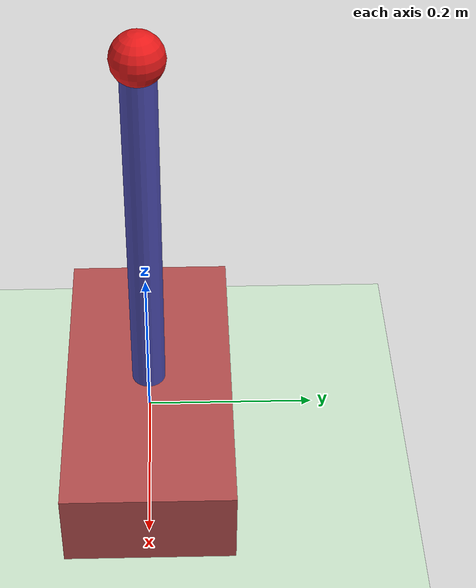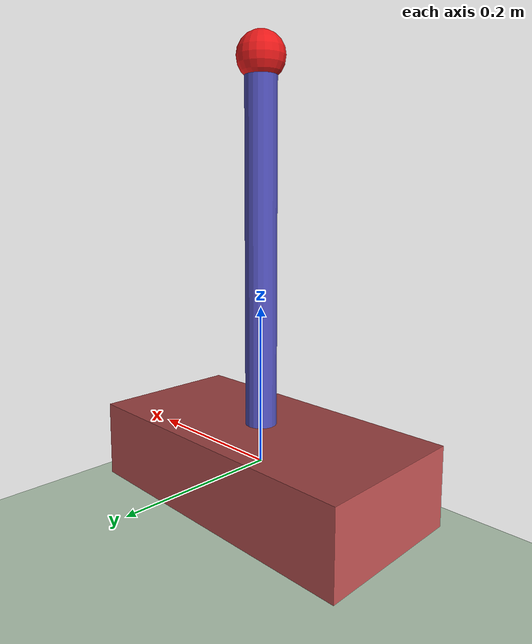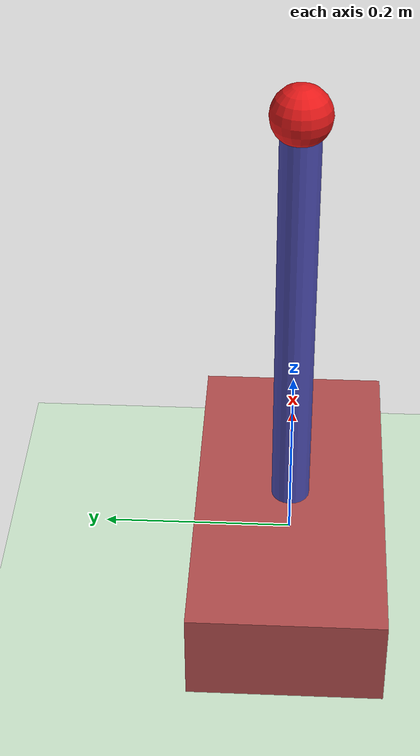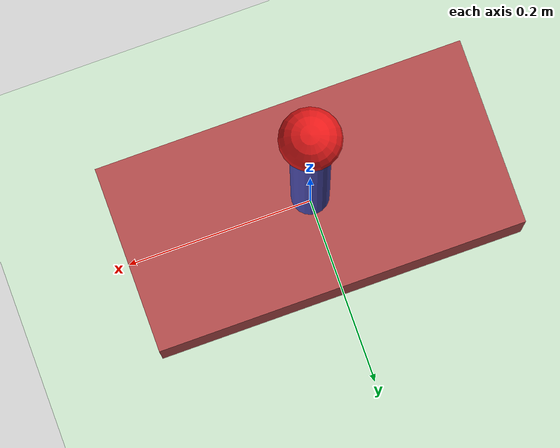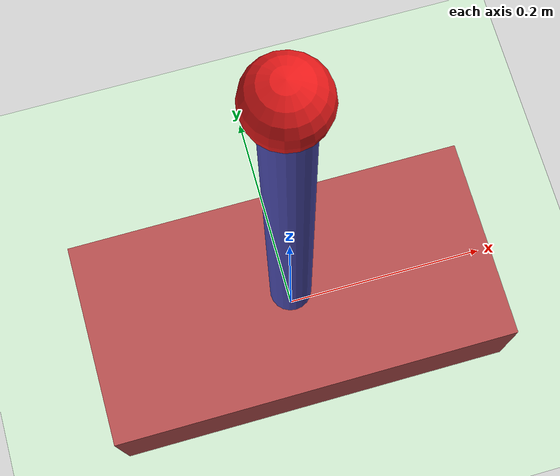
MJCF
<mujoco model="cartpole">
    <compiler inertiafromgeom="true" angle="radian" coordinate="local"/>

    <option timestep="0.01" gravity="0 0 -9.81">
        <flag constraint="disable" energy="enable"/>
    </option>

    <default>
        <joint armature="0" damping="0" limited="false"/>
        <geom contype="0" friction="1 0.1 0.1" rgba="0.7 0.7 0 1"/>
    </default>

    <worldbody>
        <!-- Ground plane -->
        <geom name="floor" pos="0 0 -0.1" size="10 10 0.1" type="plane" rgba="0.8 0.9 0.8 1" contype="1" condim="3"/>

        <!-- Cart -->
        <body name="cart" pos="0 0 0">
            <!-- Cart can slide along x-axis -->
            <joint name="slider" type="slide" pos="0 0 0" axis="1 0 0" range="-2.4 2.4" limited="true"/>
            <geom name="cart_geom" type="box" size="0.2 0.1 0.05" pos="0 0 0" rgba="0.7 0.3 0.3 1" mass="1.0"/>

            <!-- Pole -->
            <body name="pole" pos="0 0 0">
                <!-- Pole can rotate around y-axis (in 2D plane) -->
                <joint name="hinge" type="hinge" pos="0 0 0" axis="0 1 0" ref="3.14159"/>
                <geom name="pole_geom" type="capsule" fromto="0 0 0 0 0 0.5" size="0.02" rgba="0.3 0.3 0.7 1" mass="0.1"/>
                <!-- Add a small sphere at the tip for visual clarity -->
                <geom name="pole_tip" type="sphere" pos="0 0 0.5" size="0.03" rgba="0.9 0.1 0.1 1" mass="0.05"/>
            </body>
        </body>
    </worldbody>

    <actuator>
        <!-- Force actuator on the cart -->
        <motor name="cart_motor" joint="slider" gear="1" ctrllimited="true" ctrlrange="-10 10"/>
    </actuator>

    <sensor>
        <!-- Sensors for state observation -->
        <jointpos name="cart_pos" joint="slider"/>
        <jointpos name="pole_angle" joint="hinge"/>
        <jointvel name="cart_vel" joint="slider"/>
        <jointvel name="pole_angvel" joint="hinge"/>
    </sensor>
</mujoco>
